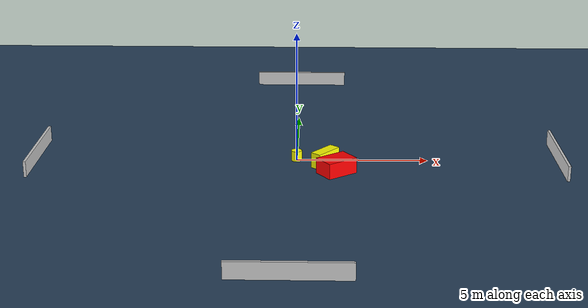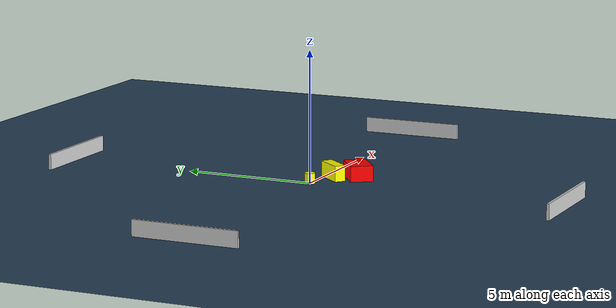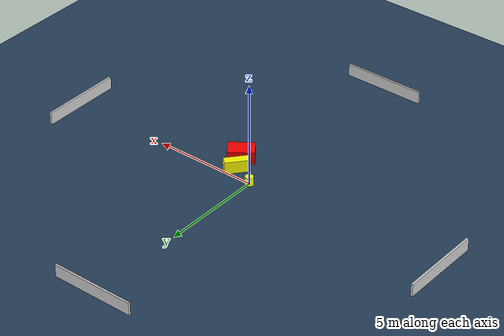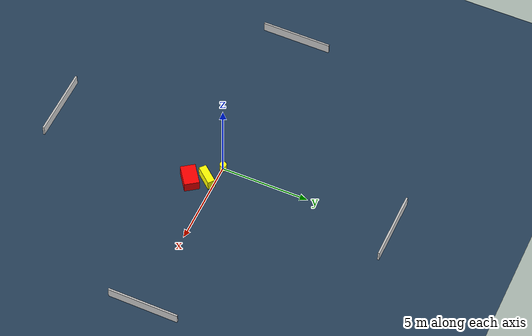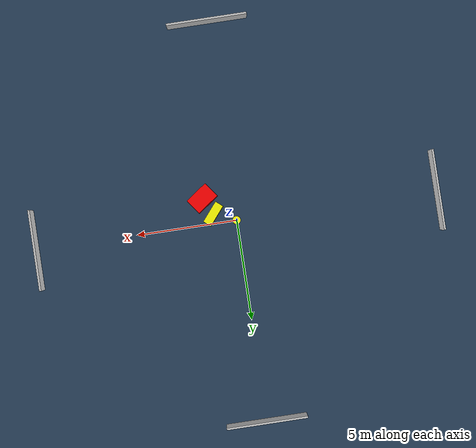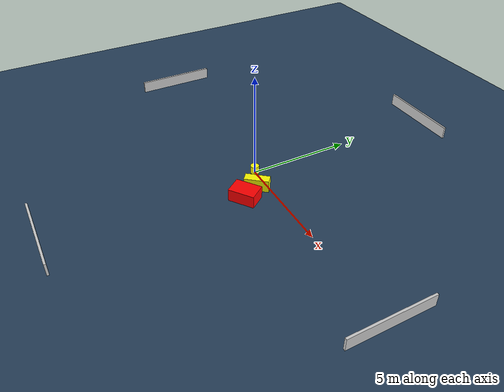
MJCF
<?xml version="1.0" ?>
<mujoco model="generated_environment">
  <option timestep="0.01" integrator="RK4" cone="elliptic"/>
  <default>
    <geom density="1"/>
  </default>
  <asset>
    <texture builtin="gradient" height="3072" name="skybox" rgb1="0.3 0.5 0.7" rgb2="0 0 0" type="skybox" width="512"/>
    <texture builtin="checker" height="300" name="groundplane" rgb1="0.2 0.3 0.4" rgb2="0.1 0.2 0.3" type="2d" width="300"/>
    <material name="groundplane" reflectance="0.2" texrepeat="5 5" texture="groundplane"/>
  </asset>
  <worldbody>
    <light dir="0 0 -1" directional="true" pos="0 0 1.5"/>
    <geom condim="3" friction="0.5 0.005 0.001" material="groundplane" name="floor" pos="0 0 0" size="0 0 0.05" type="plane"/>
    <body name="walls">
      <geom name="wall_1" condim="4" pos="-10.0 0.0 0.3" rgba="0.800000011920929 0.800000011920929 0.800000011920929 1.0" size="0.05 2.0 0.3" type="box"/>
      <geom name="wall_2" condim="4" pos="10.0 0.0 0.3" rgba="0.800000011920929 0.800000011920929 0.800000011920929 1.0" size="0.05 2.0 0.3" type="box"/>
      <geom name="wall_3" condim="4" pos="0.0 -10.0 0.3" rgba="0.800000011920929 0.800000011920929 0.800000011920929 1.0" size="2.0 0.05 0.3" type="box"/>
      <geom name="wall_4" condim="4" pos="0.0 10.0 0.3" rgba="0.800000011920929 0.800000011920929 0.800000011920929 1.0" size="2.0 0.05 0.3" type="box"/>
    </body>
    <body name="robot">
      <joint name="joint_x" type="slide" pos="0 0 0" axis="1 0 0"/>
      <joint name="joint_y" type="slide" pos="0 0 0" axis="0 1 0"/>
      <geom name="robot" type="cylinder" pos="0.0 0.0 0.2" size="0.2 0.2 0.0" mass="5.0" friction="1.0 0.005 0.0001" condim="4" rgba="1.0 1.0 0.0 1.0"/>
    </body>
    <body name="obstacle_1_movable">
      <geom name="obstacle_1_movable" condim="4" pos="1.0913135011283184 -0.4680298177046188 0.3" euler="0 0 140.3045692987166" friction="0.0 0.005 0.001" rgba="1.0 1.0 0.0 1.0" size="0.2130895352879488 0.5759114030511935 0.3" type="box" mass="0.1"/>
      <joint type="free"/>
    </body>
    <body name="obstacle_2_static">
      <geom name="obstacle_2_static" condim="4" pos="1.5104494669110566 -1.3008841024085671 0.3" euler="0 0 125.99092550833053" friction="0.0 0.005 0.001" rgba="1.0 0.0 0.0 1.0" size="0.4244374506838969 0.6237387313216618 0.3" type="box"/>
    </body>
  </worldbody>
  <actuator>
    <motor name="actuator_x" joint="joint_x" gear="1" ctrlrange="-1 1"/>
    <motor name="actuator_y" joint="joint_y" gear="1" ctrlrange="-1 1"/>
  </actuator>
</mujoco>
